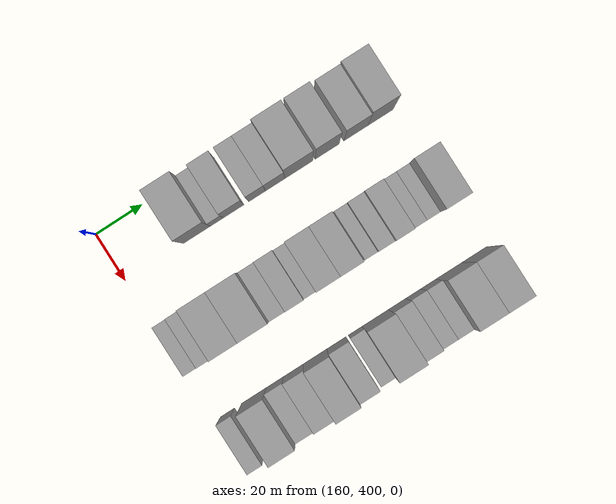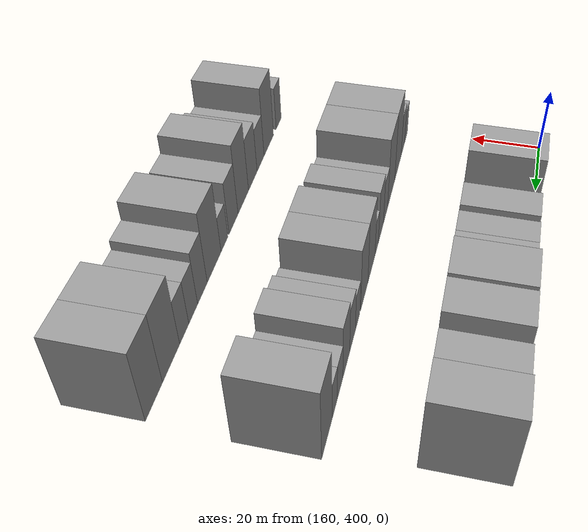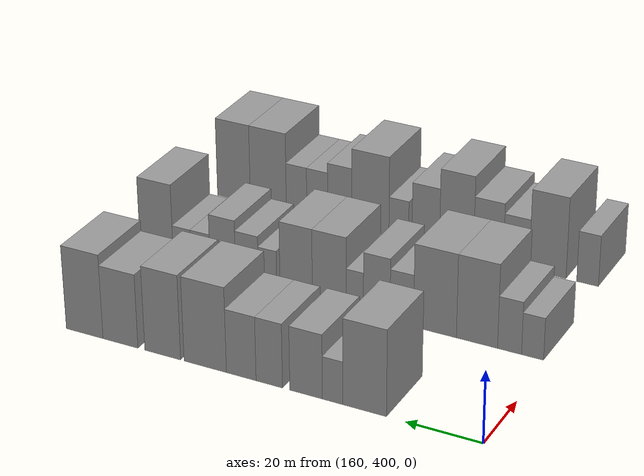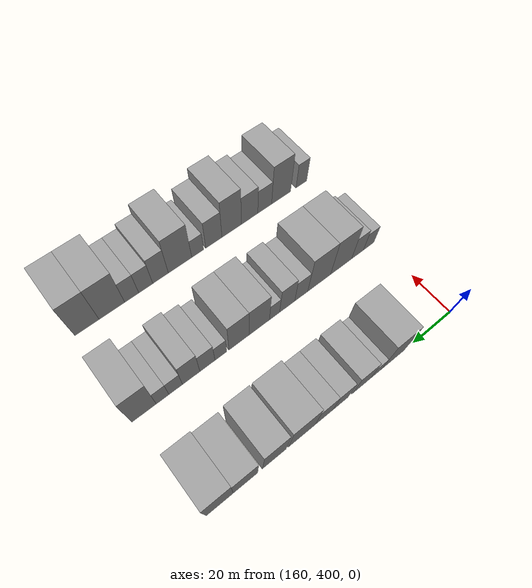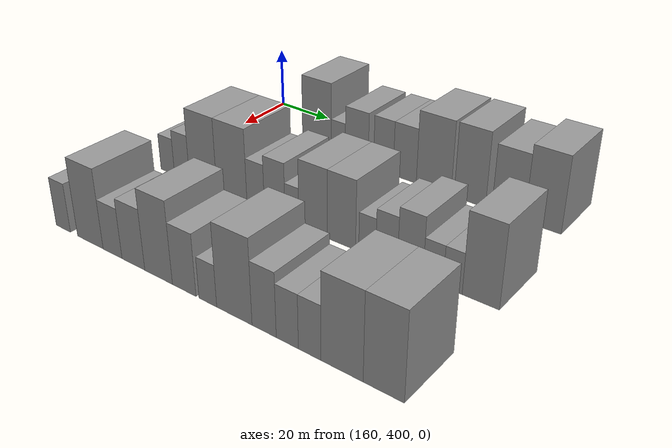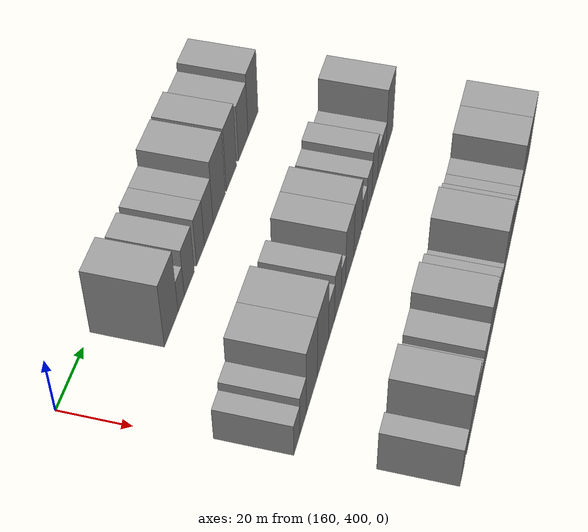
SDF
<sdf version="1.6">
 <world name="default">
  <model name="building_521">
   <static>1</static>
   <pose>170.0000 430.8130 0 0.000000 0.000000 0.000000</pose>
   <link name="link">
    <pose>0 0 12.00 0 0 0</pose>
    <collision name="collision"><geometry><box><size>20.0000 11.6130 24.0000</size></box></geometry></collision>
    <visual name="visual">
     <cast_shadows>0</cast_shadows>
     <geometry><box><size>20.0000 11.6130 24.0000</size></box></geometry>
     <material>
      <script>
       <uri>model://grey_wall/materials/scripts</uri>
       <uri>model://grey_wall/materials/textures</uri>
       <name>vrc/grey_wall</name>
      </script>
     </material>
    </visual>
   </link>
  </model>
  <model name="building_522">
   <static>1</static>
   <pose>170.0000 439.3655 0 0.000000 0.000000 0.000000</pose>
   <link name="link">
    <pose>0 0 6.00 0 0 0</pose>
    <collision name="collision"><geometry><box><size>20.0000 5.4921 12.0000</size></box></geometry></collision>
    <visual name="visual">
     <cast_shadows>0</cast_shadows>
     <geometry><box><size>20.0000 5.4921 12.0000</size></box></geometry>
     <material>
      <script>
       <uri>model://grey_wall/materials/scripts</uri>
       <uri>model://grey_wall/materials/textures</uri>
       <name>vrc/grey_wall</name>
      </script>
     </material>
    </visual>
   </link>
  </model>
  <model name="building_523">
   <static>1</static>
   <pose>170.0000 446.5312 0 0.000000 0.000000 0.000000</pose>
   <link name="link">
    <pose>0 0 9.00 0 0 0</pose>
    <collision name="collision"><geometry><box><size>20.0000 8.8392 18.0000</size></box></geometry></collision>
    <visual name="visual">
     <cast_shadows>0</cast_shadows>
     <geometry><box><size>20.0000 8.8392 18.0000</size></box></geometry>
     <material>
      <script>
       <uri>model://grey_wall/materials/scripts</uri>
       <uri>model://grey_wall/materials/textures</uri>
       <name>vrc/grey_wall</name>
      </script>
     </material>
    </visual>
   </link>
  </model>
  <model name="building_524">
   <static>1</static>
   <pose>170.0000 456.5866 0 0.000000 0.000000 0.000000</pose>
   <link name="link">
    <pose>0 0 9.00 0 0 0</pose>
    <collision name="collision"><geometry><box><size>20.0000 7.2715 18.0000</size></box></geometry></collision>
    <visual name="visual">
     <cast_shadows>0</cast_shadows>
     <geometry><box><size>20.0000 7.2715 18.0000</size></box></geometry>
     <material>
      <script>
       <uri>model://grey_wall/materials/scripts</uri>
       <uri>model://grey_wall/materials/textures</uri>
       <name>vrc/grey_wall</name>
      </script>
     </material>
    </visual>
   </link>
  </model>
  <model name="building_525">
   <static>1</static>
   <pose>170.0000 464.3523 0 0.000000 0.000000 0.000000</pose>
   <link name="link">
    <pose>0 0 9.00 0 0 0</pose>
    <collision name="collision"><geometry><box><size>20.0000 8.2601 18.0000</size></box></geometry></collision>
    <visual name="visual">
     <cast_shadows>0</cast_shadows>
     <geometry><box><size>20.0000 8.2601 18.0000</size></box></geometry>
     <material>
      <script>
       <uri>model://grey_wall/materials/scripts</uri>
       <uri>model://grey_wall/materials/textures</uri>
       <name>vrc/grey_wall</name>
      </script>
     </material>
    </visual>
   </link>
  </model>
  <model name="building_526">
   <static>1</static>
   <pose>170.0000 474.4674 0 0.000000 0.000000 0.000000</pose>
   <link name="link">
    <pose>0 0 12.00 0 0 0</pose>
    <collision name="collision"><geometry><box><size>20.0000 11.9702 24.0000</size></box></geometry></collision>
    <visual name="visual">
     <cast_shadows>0</cast_shadows>
     <geometry><box><size>20.0000 11.9702 24.0000</size></box></geometry>
     <material>
      <script>
       <uri>model://grey_wall/materials/scripts</uri>
       <uri>model://grey_wall/materials/textures</uri>
       <name>vrc/grey_wall</name>
      </script>
     </material>
    </visual>
   </link>
  </model>
  <model name="building_527">
   <static>1</static>
   <pose>170.0000 486.5912 0 0.000000 0.000000 0.000000</pose>
   <link name="link">
    <pose>0 0 12.00 0 0 0</pose>
    <collision name="collision"><geometry><box><size>20.0000 10.2773 24.0000</size></box></geometry></collision>
    <visual name="visual">
     <cast_shadows>0</cast_shadows>
     <geometry><box><size>20.0000 10.2773 24.0000</size></box></geometry>
     <material>
      <script>
       <uri>model://grey_wall/materials/scripts</uri>
       <uri>model://grey_wall/materials/textures</uri>
       <name>vrc/grey_wall</name>
      </script>
     </material>
    </visual>
   </link>
  </model>
  <model name="building_528">
   <static>1</static>
   <pose>170.0000 498.8449 0 0.000000 0.000000 0.000000</pose>
   <link name="link">
    <pose>0 0 10.50 0 0 0</pose>
    <collision name="collision"><geometry><box><size>20.0000 10.2300 21.0000</size></box></geometry></collision>
    <visual name="visual">
     <cast_shadows>0</cast_shadows>
     <geometry><box><size>20.0000 10.2300 21.0000</size></box></geometry>
     <material>
      <script>
       <uri>model://grey_wall/materials/scripts</uri>
       <uri>model://grey_wall/materials/textures</uri>
       <name>vrc/grey_wall</name>
      </script>
     </material>
    </visual>
   </link>
  </model>
  <model name="building_529">
   <static>1</static>
   <pose>170.0000 509.4001 0 0.000000 0.000000 0.000000</pose>
   <link name="link">
    <pose>0 0 12.00 0 0 0</pose>
    <collision name="collision"><geometry><box><size>20.0000 10.8805 24.0000</size></box></geometry></collision>
    <visual name="visual">
     <cast_shadows>0</cast_shadows>
     <geometry><box><size>20.0000 10.8805 24.0000</size></box></geometry>
     <material>
      <script>
       <uri>model://grey_wall/materials/scripts</uri>
       <uri>model://grey_wall/materials/textures</uri>
       <name>vrc/grey_wall</name>
      </script>
     </material>
    </visual>
   </link>
  </model>
  <model name="building_663">
   <static>1</static>
   <pose>210.0000 404.3371 0 0.000000 0.000000 0.000000</pose>
   <link name="link">
    <pose>0 0 6.00 0 0 0</pose>
    <collision name="collision"><geometry><box><size>20.0000 5.9013 12.0000</size></box></geometry></collision>
    <visual name="visual">
     <cast_shadows>0</cast_shadows>
     <geometry><box><size>20.0000 5.9013 12.0000</size></box></geometry>
     <material>
      <script>
       <uri>model://grey_wall/materials/scripts</uri>
       <uri>model://grey_wall/materials/textures</uri>
       <name>vrc/grey_wall</name>
      </script>
     </material>
    </visual>
   </link>
  </model>
  <model name="building_664">
   <static>1</static>
   <pose>210.0000 410.5149 0 0.000000 0.000000 0.000000</pose>
   <link name="link">
    <pose>0 0 7.50 0 0 0</pose>
    <collision name="collision"><geometry><box><size>20.0000 6.4543 15.0000</size></box></geometry></collision>
    <visual name="visual">
     <cast_shadows>0</cast_shadows>
     <geometry><box><size>20.0000 6.4543 15.0000</size></box></geometry>
     <material>
      <script>
       <uri>model://grey_wall/materials/scripts</uri>
       <uri>model://grey_wall/materials/textures</uri>
       <name>vrc/grey_wall</name>
      </script>
     </material>
    </visual>
   </link>
  </model>
  <model name="building_665">
   <static>1</static>
   <pose>210.0000 419.3545 0 0.000000 0.000000 0.000000</pose>
   <link name="link">
    <pose>0 0 12.00 0 0 0</pose>
    <collision name="collision"><geometry><box><size>20.0000 11.2248 24.0000</size></box></geometry></collision>
    <visual name="visual">
     <cast_shadows>0</cast_shadows>
     <geometry><box><size>20.0000 11.2248 24.0000</size></box></geometry>
     <material>
      <script>
       <uri>model://grey_wall/materials/scripts</uri>
       <uri>model://grey_wall/materials/textures</uri>
       <name>vrc/grey_wall</name>
      </script>
     </material>
    </visual>
   </link>
  </model>
  <model name="building_666">
   <static>1</static>
   <pose>210.0000 430.8978 0 0.000000 0.000000 0.000000</pose>
   <link name="link">
    <pose>0 0 12.00 0 0 0</pose>
    <collision name="collision"><geometry><box><size>20.0000 11.8619 24.0000</size></box></geometry></collision>
    <visual name="visual">
     <cast_shadows>0</cast_shadows>
     <geometry><box><size>20.0000 11.8619 24.0000</size></box></geometry>
     <material>
      <script>
       <uri>model://grey_wall/materials/scripts</uri>
       <uri>model://grey_wall/materials/textures</uri>
       <name>vrc/grey_wall</name>
      </script>
     </material>
    </visual>
   </link>
  </model>
  <model name="building_667">
   <static>1</static>
   <pose>210.0000 440.1302 0 0.000000 0.000000 0.000000</pose>
   <link name="link">
    <pose>0 0 7.50 0 0 0</pose>
    <collision name="collision"><geometry><box><size>20.0000 6.6029 15.0000</size></box></geometry></collision>
    <visual name="visual">
     <cast_shadows>0</cast_shadows>
     <geometry><box><size>20.0000 6.6029 15.0000</size></box></geometry>
     <material>
      <script>
       <uri>model://grey_wall/materials/scripts</uri>
       <uri>model://grey_wall/materials/textures</uri>
       <name>vrc/grey_wall</name>
      </script>
     </material>
    </visual>
   </link>
  </model>
  <model name="building_668">
   <static>1</static>
   <pose>210.0000 447.2183 0 0.000000 0.000000 0.000000</pose>
   <link name="link">
    <pose>0 0 9.00 0 0 0</pose>
    <collision name="collision"><geometry><box><size>20.0000 7.5732 18.0000</size></box></geometry></collision>
    <visual name="visual">
     <cast_shadows>0</cast_shadows>
     <geometry><box><size>20.0000 7.5732 18.0000</size></box></geometry>
     <material>
      <script>
       <uri>model://grey_wall/materials/scripts</uri>
       <uri>model://grey_wall/materials/textures</uri>
       <name>vrc/grey_wall</name>
      </script>
     </material>
    </visual>
   </link>
  </model>
  <model name="building_669">
   <static>1</static>
   <pose>210.0000 453.4733 0 0.000000 0.000000 0.000000</pose>
   <link name="link">
    <pose>0 0 6.00 0 0 0</pose>
    <collision name="collision"><geometry><box><size>20.0000 4.9370 12.0000</size></box></geometry></collision>
    <visual name="visual">
     <cast_shadows>0</cast_shadows>
     <geometry><box><size>20.0000 4.9370 12.0000</size></box></geometry>
     <material>
      <script>
       <uri>model://grey_wall/materials/scripts</uri>
       <uri>model://grey_wall/materials/textures</uri>
       <name>vrc/grey_wall</name>
      </script>
     </material>
    </visual>
   </link>
  </model>
  <model name="building_670">
   <static>1</static>
   <pose>210.0000 460.8120 0 0.000000 0.000000 0.000000</pose>
   <link name="link">
    <pose>0 0 10.50 0 0 0</pose>
    <collision name="collision"><geometry><box><size>20.0000 9.7403 21.0000</size></box></geometry></collision>
    <visual name="visual">
     <cast_shadows>0</cast_shadows>
     <geometry><box><size>20.0000 9.7403 21.0000</size></box></geometry>
     <material>
      <script>
       <uri>model://grey_wall/materials/scripts</uri>
       <uri>model://grey_wall/materials/textures</uri>
       <name>vrc/grey_wall</name>
      </script>
     </material>
    </visual>
   </link>
  </model>
  <model name="building_671">
   <static>1</static>
   <pose>210.0000 470.4005 0 0.000000 0.000000 0.000000</pose>
   <link name="link">
    <pose>0 0 10.50 0 0 0</pose>
    <collision name="collision"><geometry><box><size>20.0000 9.4369 21.0000</size></box></geometry></collision>
    <visual name="visual">
     <cast_shadows>0</cast_shadows>
     <geometry><box><size>20.0000 9.4369 21.0000</size></box></geometry>
     <material>
      <script>
       <uri>model://grey_wall/materials/scripts</uri>
       <uri>model://grey_wall/materials/textures</uri>
       <name>vrc/grey_wall</name>
      </script>
     </material>
    </visual>
   </link>
  </model>
  <model name="building_672">
   <static>1</static>
   <pose>210.0000 478.8191 0 0.000000 0.000000 0.000000</pose>
   <link name="link">
    <pose>0 0 6.00 0 0 0</pose>
    <collision name="collision"><geometry><box><size>20.0000 5.4003 12.0000</size></box></geometry></collision>
    <visual name="visual">
     <cast_shadows>0</cast_shadows>
     <geometry><box><size>20.0000 5.4003 12.0000</size></box></geometry>
     <material>
      <script>
       <uri>model://grey_wall/materials/scripts</uri>
       <uri>model://grey_wall/materials/textures</uri>
       <name>vrc/grey_wall</name>
      </script>
     </material>
    </visual>
   </link>
  </model>
  <model name="building_673">
   <static>1</static>
   <pose>210.0000 484.8994 0 0.000000 0.000000 0.000000</pose>
   <link name="link">
    <pose>0 0 7.50 0 0 0</pose>
    <collision name="collision"><geometry><box><size>20.0000 6.7603 15.0000</size></box></geometry></collision>
    <visual name="visual">
     <cast_shadows>0</cast_shadows>
     <geometry><box><size>20.0000 6.7603 15.0000</size></box></geometry>
     <material>
      <script>
       <uri>model://grey_wall/materials/scripts</uri>
       <uri>model://grey_wall/materials/textures</uri>
       <name>vrc/grey_wall</name>
      </script>
     </material>
    </visual>
   </link>
  </model>
  <model name="building_674">
   <static>1</static>
   <pose>210.0000 492.1196 0 0.000000 0.000000 0.000000</pose>
   <link name="link">
    <pose>0 0 9.00 0 0 0</pose>
    <collision name="collision"><geometry><box><size>20.0000 7.6801 18.0000</size></box></geometry></collision>
    <visual name="visual">
     <cast_shadows>0</cast_shadows>
     <geometry><box><size>20.0000 7.6801 18.0000</size></box></geometry>
     <material>
      <script>
       <uri>model://grey_wall/materials/scripts</uri>
       <uri>model://grey_wall/materials/textures</uri>
       <name>vrc/grey_wall</name>
      </script>
     </material>
    </visual>
   </link>
  </model>
  <model name="building_675">
   <static>1</static>
   <pose>210.0000 498.8803 0 0.000000 0.000000 0.000000</pose>
   <link name="link">
    <pose>0 0 6.00 0 0 0</pose>
    <collision name="collision"><geometry><box><size>20.0000 5.8413 12.0000</size></box></geometry></collision>
    <visual name="visual">
     <cast_shadows>0</cast_shadows>
     <geometry><box><size>20.0000 5.8413 12.0000</size></box></geometry>
     <material>
      <script>
       <uri>model://grey_wall/materials/scripts</uri>
       <uri>model://grey_wall/materials/textures</uri>
       <name>vrc/grey_wall</name>
      </script>
     </material>
    </visual>
   </link>
  </model>
  <model name="building_676">
   <static>1</static>
   <pose>210.0000 504.4911 0 0.000000 0.000000 0.000000</pose>
   <link name="link">
    <pose>0 0 6.00 0 0 0</pose>
    <collision name="collision"><geometry><box><size>20.0000 5.3802 12.0000</size></box></geometry></collision>
    <visual name="visual">
     <cast_shadows>0</cast_shadows>
     <geometry><box><size>20.0000 5.3802 12.0000</size></box></geometry>
     <material>
      <script>
       <uri>model://grey_wall/materials/scripts</uri>
       <uri>model://grey_wall/materials/textures</uri>
       <name>vrc/grey_wall</name>
      </script>
     </material>
    </visual>
   </link>
  </model>
  <model name="building_677">
   <static>1</static>
   <pose>210.0000 512.2721 0 0.000000 0.000000 0.000000</pose>
   <link name="link">
    <pose>0 0 12.00 0 0 0</pose>
    <collision name="collision"><geometry><box><size>20.0000 10.1819 24.0000</size></box></geometry></collision>
    <visual name="visual">
     <cast_shadows>0</cast_shadows>
     <geometry><box><size>20.0000 10.1819 24.0000</size></box></geometry>
     <material>
      <script>
       <uri>model://grey_wall/materials/scripts</uri>
       <uri>model://grey_wall/materials/textures</uri>
       <name>vrc/grey_wall</name>
      </script>
     </material>
    </visual>
   </link>
  </model>
  <model name="building_798">
   <static>1</static>
   <pose>250.0000 405.4786 0 0.000000 0.000000 0.000000</pose>
   <link name="link">
    <pose>0 0 7.50 0 0 0</pose>
    <collision name="collision"><geometry><box><size>20.0000 6.0731 15.0000</size></box></geometry></collision>
    <visual name="visual">
     <cast_shadows>0</cast_shadows>
     <geometry><box><size>20.0000 6.0731 15.0000</size></box></geometry>
     <material>
      <script>
       <uri>model://grey_wall/materials/scripts</uri>
       <uri>model://grey_wall/materials/textures</uri>
       <name>vrc/grey_wall</name>
      </script>
     </material>
    </visual>
   </link>
  </model>
  <model name="building_799">
   <static>1</static>
   <pose>250.0000 416.7418 0 0.000000 0.000000 0.000000</pose>
   <link name="link">
    <pose>0 0 12.00 0 0 0</pose>
    <collision name="collision"><geometry><box><size>20.0000 10.4533 24.0000</size></box></geometry></collision>
    <visual name="visual">
     <cast_shadows>0</cast_shadows>
     <geometry><box><size>20.0000 10.4533 24.0000</size></box></geometry>
     <material>
      <script>
       <uri>model://grey_wall/materials/scripts</uri>
       <uri>model://grey_wall/materials/textures</uri>
       <name>vrc/grey_wall</name>
      </script>
     </material>
    </visual>
   </link>
  </model>
  <model name="building_800">
   <static>1</static>
   <pose>250.0000 425.6864 0 0.000000 0.000000 0.000000</pose>
   <link name="link">
    <pose>0 0 7.50 0 0 0</pose>
    <collision name="collision"><geometry><box><size>20.0000 7.4358 15.0000</size></box></geometry></collision>
    <visual name="visual">
     <cast_shadows>0</cast_shadows>
     <geometry><box><size>20.0000 7.4358 15.0000</size></box></geometry>
     <material>
      <script>
       <uri>model://grey_wall/materials/scripts</uri>
       <uri>model://grey_wall/materials/textures</uri>
       <name>vrc/grey_wall</name>
      </script>
     </material>
    </visual>
   </link>
  </model>
  <model name="building_801">
   <static>1</static>
   <pose>250.0000 433.7191 0 0.000000 0.000000 0.000000</pose>
   <link name="link">
    <pose>0 0 9.00 0 0 0</pose>
    <collision name="collision"><geometry><box><size>20.0000 8.6297 18.0000</size></box></geometry></collision>
    <visual name="visual">
     <cast_shadows>0</cast_shadows>
     <geometry><box><size>20.0000 8.6297 18.0000</size></box></geometry>
     <material>
      <script>
       <uri>model://grey_wall/materials/scripts</uri>
       <uri>model://grey_wall/materials/textures</uri>
       <name>vrc/grey_wall</name>
      </script>
     </material>
    </visual>
   </link>
  </model>
  <model name="building_802">
   <static>1</static>
   <pose>250.0000 443.0464 0 0.000000 0.000000 0.000000</pose>
   <link name="link">
    <pose>0 0 12.00 0 0 0</pose>
    <collision name="collision"><geometry><box><size>20.0000 10.0249 24.0000</size></box></geometry></collision>
    <visual name="visual">
     <cast_shadows>0</cast_shadows>
     <geometry><box><size>20.0000 10.0249 24.0000</size></box></geometry>
     <material>
      <script>
       <uri>model://grey_wall/materials/scripts</uri>
       <uri>model://grey_wall/materials/textures</uri>
       <name>vrc/grey_wall</name>
      </script>
     </material>
    </visual>
   </link>
  </model>
  <model name="building_803">
   <static>1</static>
   <pose>250.0000 452.1490 0 0.000000 0.000000 0.000000</pose>
   <link name="link">
    <pose>0 0 9.00 0 0 0</pose>
    <collision name="collision"><geometry><box><size>20.0000 8.1803 18.0000</size></box></geometry></collision>
    <visual name="visual">
     <cast_shadows>0</cast_shadows>
     <geometry><box><size>20.0000 8.1803 18.0000</size></box></geometry>
     <material>
      <script>
       <uri>model://grey_wall/materials/scripts</uri>
       <uri>model://grey_wall/materials/textures</uri>
       <name>vrc/grey_wall</name>
      </script>
     </material>
    </visual>
   </link>
  </model>
  <model name="building_804">
   <static>1</static>
   <pose>250.0000 460.1946 0 0.000000 0.000000 0.000000</pose>
   <link name="link">
    <pose>0 0 6.00 0 0 0</pose>
    <collision name="collision"><geometry><box><size>20.0000 5.9109 12.0000</size></box></geometry></collision>
    <visual name="visual">
     <cast_shadows>0</cast_shadows>
     <geometry><box><size>20.0000 5.9109 12.0000</size></box></geometry>
     <material>
      <script>
       <uri>model://grey_wall/materials/scripts</uri>
       <uri>model://grey_wall/materials/textures</uri>
       <name>vrc/grey_wall</name>
      </script>
     </material>
    </visual>
   </link>
  </model>
  <model name="building_805">
   <static>1</static>
   <pose>250.0000 468.7921 0 0.000000 0.000000 0.000000</pose>
   <link name="link">
    <pose>0 0 12.00 0 0 0</pose>
    <collision name="collision"><geometry><box><size>20.0000 11.2842 24.0000</size></box></geometry></collision>
    <visual name="visual">
     <cast_shadows>0</cast_shadows>
     <geometry><box><size>20.0000 11.2842 24.0000</size></box></geometry>
     <material>
      <script>
       <uri>model://grey_wall/materials/scripts</uri>
       <uri>model://grey_wall/materials/textures</uri>
       <name>vrc/grey_wall</name>
      </script>
     </material>
    </visual>
   </link>
  </model>
  <model name="building_806">
   <static>1</static>
   <pose>250.0000 478.1163 0 0.000000 0.000000 0.000000</pose>
   <link name="link">
    <pose>0 0 9.00 0 0 0</pose>
    <collision name="collision"><geometry><box><size>20.0000 7.3641 18.0000</size></box></geometry></collision>
    <visual name="visual">
     <cast_shadows>0</cast_shadows>
     <geometry><box><size>20.0000 7.3641 18.0000</size></box></geometry>
     <material>
      <script>
       <uri>model://grey_wall/materials/scripts</uri>
       <uri>model://grey_wall/materials/textures</uri>
       <name>vrc/grey_wall</name>
      </script>
     </material>
    </visual>
   </link>
  </model>
  <model name="building_807">
   <static>1</static>
   <pose>250.0000 485.0401 0 0.000000 0.000000 0.000000</pose>
   <link name="link">
    <pose>0 0 7.50 0 0 0</pose>
    <collision name="collision"><geometry><box><size>20.0000 6.4835 15.0000</size></box></geometry></collision>
    <visual name="visual">
     <cast_shadows>0</cast_shadows>
     <geometry><box><size>20.0000 6.4835 15.0000</size></box></geometry>
     <material>
      <script>
       <uri>model://grey_wall/materials/scripts</uri>
       <uri>model://grey_wall/materials/textures</uri>
       <name>vrc/grey_wall</name>
      </script>
     </material>
    </visual>
   </link>
  </model>
  <model name="building_808">
   <static>1</static>
   <pose>250.0000 491.4857 0 0.000000 0.000000 0.000000</pose>
   <link name="link">
    <pose>0 0 7.50 0 0 0</pose>
    <collision name="collision"><geometry><box><size>20.0000 6.4077 15.0000</size></box></geometry></collision>
    <visual name="visual">
     <cast_shadows>0</cast_shadows>
     <geometry><box><size>20.0000 6.4077 15.0000</size></box></geometry>
     <material>
      <script>
       <uri>model://grey_wall/materials/scripts</uri>
       <uri>model://grey_wall/materials/textures</uri>
       <name>vrc/grey_wall</name>
      </script>
     </material>
    </visual>
   </link>
  </model>
  <model name="building_809">
   <static>1</static>
   <pose>250.0000 500.3752 0 0.000000 0.000000 0.000000</pose>
   <link name="link">
    <pose>0 0 12.00 0 0 0</pose>
    <collision name="collision"><geometry><box><size>20.0000 11.3712 24.0000</size></box></geometry></collision>
    <visual name="visual">
     <cast_shadows>0</cast_shadows>
     <geometry><box><size>20.0000 11.3712 24.0000</size></box></geometry>
     <material>
      <script>
       <uri>model://grey_wall/materials/scripts</uri>
       <uri>model://grey_wall/materials/textures</uri>
       <name>vrc/grey_wall</name>
      </script>
     </material>
    </visual>
   </link>
  </model>
  <model name="building_810">
   <static>1</static>
   <pose>250.0000 511.3237 0 0.000000 0.000000 0.000000</pose>
   <link name="link">
    <pose>0 0 12.00 0 0 0</pose>
    <collision name="collision"><geometry><box><size>20.0000 10.5258 24.0000</size></box></geometry></collision>
    <visual name="visual">
     <cast_shadows>0</cast_shadows>
     <geometry><box><size>20.0000 10.5258 24.0000</size></box></geometry>
     <material>
      <script>
       <uri>model://grey_wall/materials/scripts</uri>
       <uri>model://grey_wall/materials/textures</uri>
       <name>vrc/grey_wall</name>
      </script>
     </material>
    </visual>
   </link>
  </model>
 </world>
</sdf>
